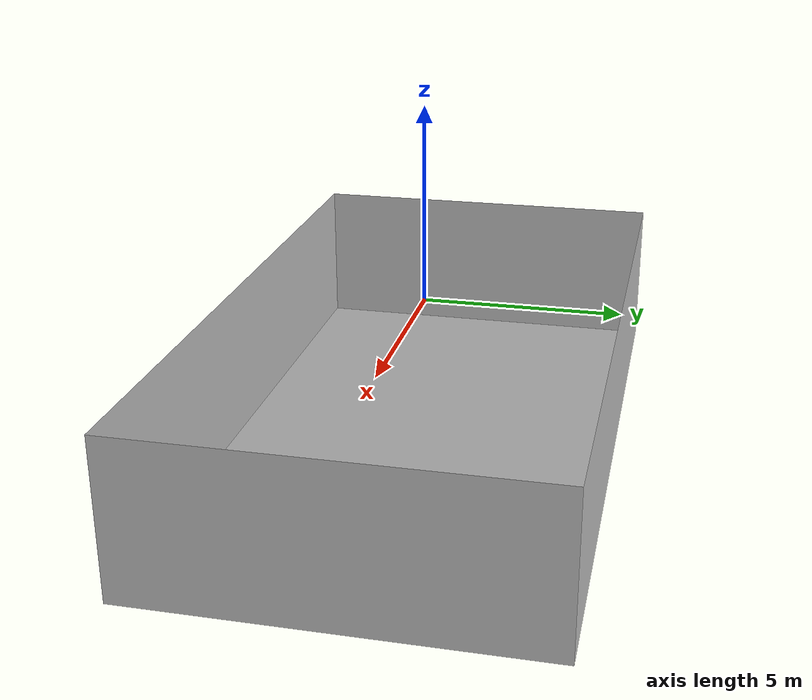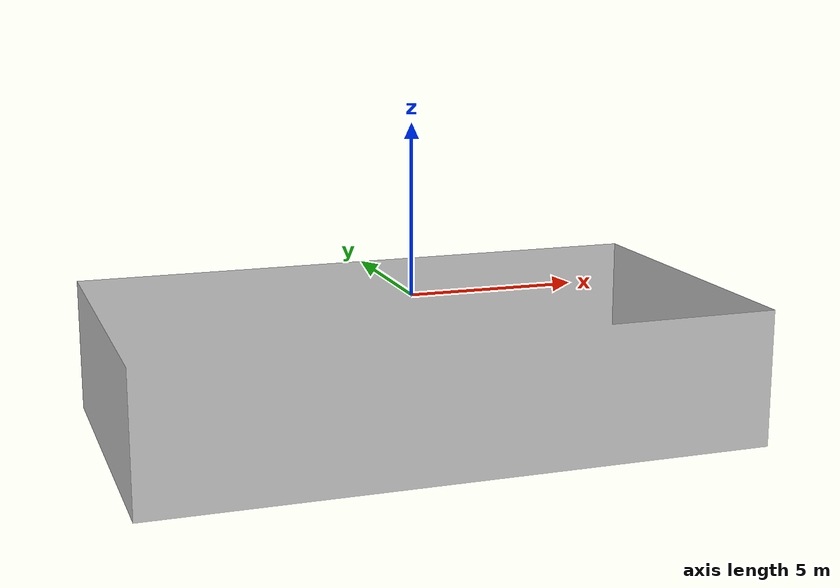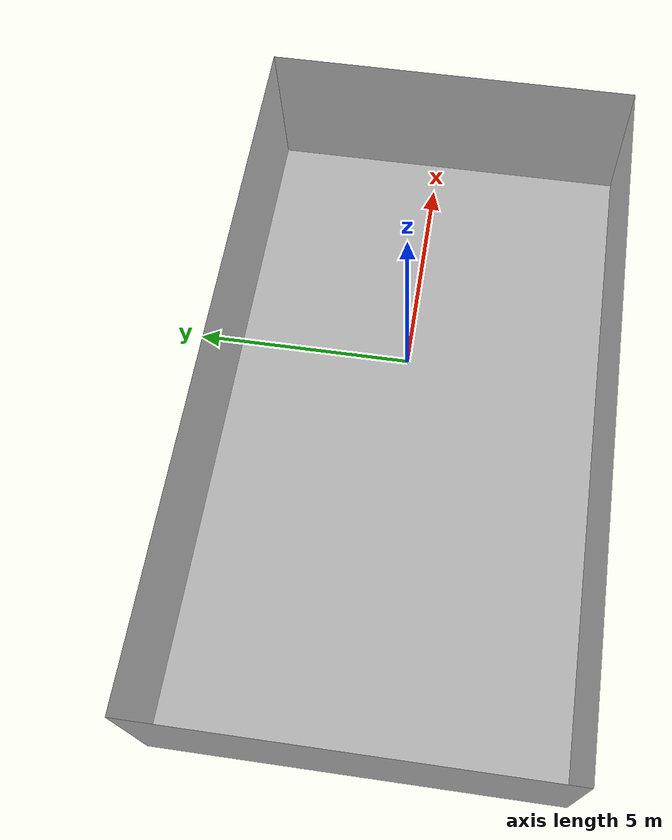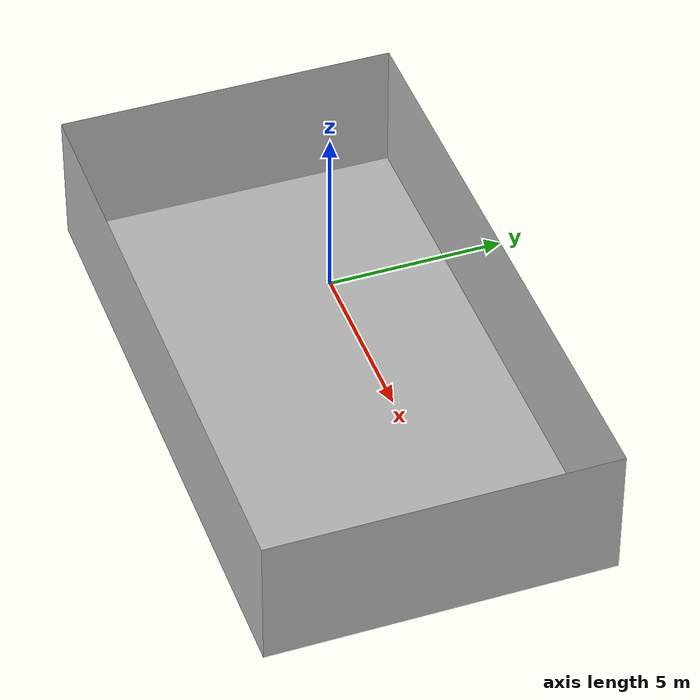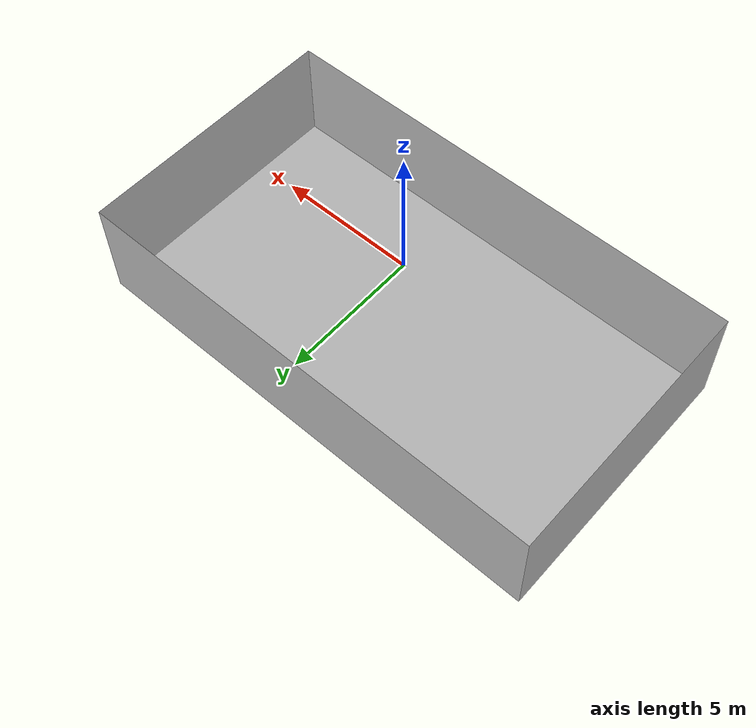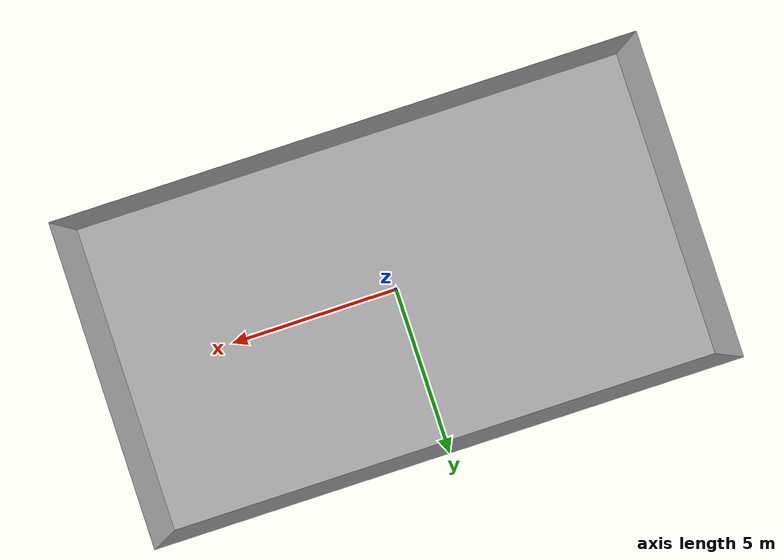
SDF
<?xml version="1.0" ?>
<sdf version="1.5">
  <world name="empty_underwater">
    <physics name="default_physics" default="true" type="ode">
      <max_step_size>0.01</max_step_size>
      <real_time_factor>1</real_time_factor>
      <real_time_update_rate>100</real_time_update_rate>
      <ode>
        <solver>
          <type>quick</type>
          <iters>50</iters>
          <sor>0.5</sor>
        </solver>
      </ode>
    </physics>
    <scene>
      <ambient>0.8 0.8 0.8 1.0</ambient>
      <sky>
        <clouds>
          <speed>12</speed>
        </clouds>
      </sky>
      <shadows>1</shadows>
    </scene>

    <!-- Origin placed somewhere in the middle of the North Sea  -->
    <spherical_coordinates>
      <latitude_deg>56.71897669633431</latitude_deg>
      <longitude_deg>3.515625</longitude_deg>
    </spherical_coordinates>

    <!-- Global light source -->
    <light type="directional" name="sun">
      <cast_shadows>true</cast_shadows>
      <pose>0 0 10 0 0 0</pose>
      <diffuse>0.2 0.2 0.2 1</diffuse>
      <specular>0.0 0.0 0.0 1</specular>
      <attenuation>
        <range>1000</range>
        <constant>0.9</constant>
        <linear>0.01</linear>
        <quadratic>0.001</quadratic>
        </attenuation>
      <direction>0.5 0.1 -0.9</direction>
    </light>

    <!-- Bounding box with sea surface -->
    <include>
      <uri>model://pool</uri>
      <pose>0 0 0 0 0 1.57</pose>
    </include>

    <!-- AR Tags for localization -->

    <plugin name="underwater_current_plugin" filename="libuuv_underwater_current_ros_plugin.so">
      <namespace>hydrodynamics</namespace>
      <constant_current>
        <topic>current_velocity</topic>
        <velocity>
          <mean>0</mean>
          <min>0</min>
          <max>5</max>
          <mu>0.0</mu>
          <noiseAmp>0.0</noiseAmp>
        </velocity>

        <horizontal_angle>
          <mean>0</mean>
          <min>-3.141592653589793238</min>
          <max>3.141592653589793238</max>
          <mu>0.0</mu>
          <noiseAmp>0.0</noiseAmp>
        </horizontal_angle>

        <vertical_angle>
          <mean>0</mean>
          <min>-3.141592653589793238</min>
          <max>3.141592653589793238</max>
          <mu>0.0</mu>
          <noiseAmp>0.0</noiseAmp>
        </vertical_angle>
      </constant_current>
    </plugin>

    <plugin name="sc_interface" filename="libuuv_sc_ros_interface_plugin.so"/>

  </world>
</sdf>

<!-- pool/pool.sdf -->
<sdf version="1.6">
<model name="pool">
  <static>true</static>
    <link name="link">
      <visual name="visual">
        <geometry>
          <mesh>
            <uri>model://pool/pool.dae</uri>
          </mesh>
        </geometry>
      </visual>
      <collision name="collision">
        <geometry>
          <mesh>
            <uri>model://pool/pool.dae</uri>
          </mesh>
        </geometry>
      </collision>
    </link>
  </model>
</sdf>
